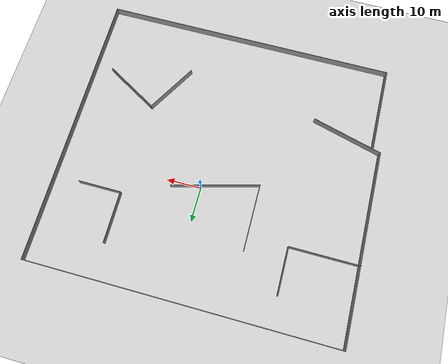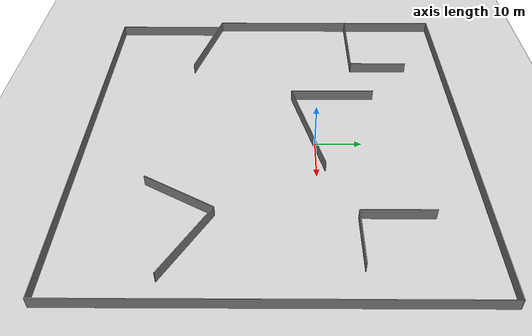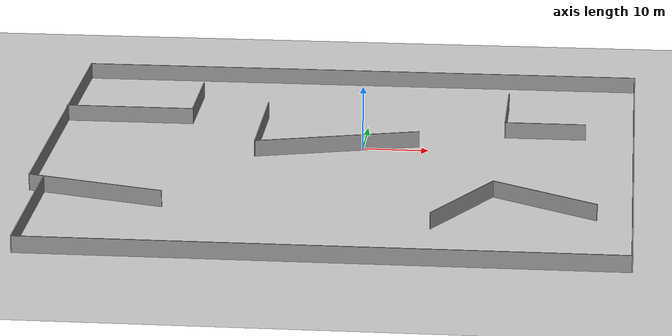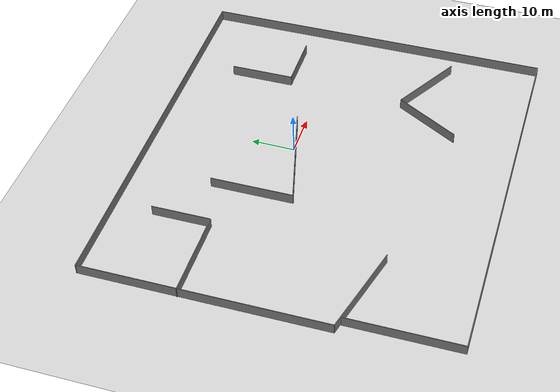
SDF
<sdf version="1.7">
 <world name="default">
  <light name="sun" type="directional">
   <pose>0 0 10 0 -0 0</pose>
   <diffuse>0.8 0.8 0.8 1</diffuse>
   <specular>0.2 0.2 0.2 1</specular>
   <attenuation>
    <range>1000</range>
    <constant>0.9</constant>
    <linear>0.01</linear>
    <quadratic>0.001</quadratic>
   </attenuation>
   <direction>-0.5 0.1 -0.9</direction>
   <spot><inner_angle>0</inner_angle><outer_angle>0</outer_angle><falloff>0</falloff></spot>
  </light>
  <model name="ground_plane">
   <static>1</static>
   <link name="link">
    <collision name="collision">
     <geometry><plane><normal>0 0 1</normal><size>100 100</size></plane></geometry>
     <surface><friction><ode><mu>100</mu><mu2>50</mu2></ode></friction></surface>
    </collision>
    <visual name="visual">
     <cast_shadows>0</cast_shadows>
     <geometry><plane><normal>0 0 1</normal><size>100 100</size></plane></geometry>
     <material>
      <script><uri>file://media/materials/scripts/gazebo.material</uri><name>Gazebo/Grey</name></script>
     </material>
    </visual>
   </link>
  </model>
  <gravity>0 0 -9.8</gravity>
  <magnetic_field>6e-06 2.3e-05 -4.2e-05</magnetic_field>
  <atmosphere type="adiabatic"/>
  <physics type="ode">
   <max_step_size>0.001</max_step_size>
   <real_time_factor>1</real_time_factor>
   <real_time_update_rate>1000</real_time_update_rate>
  </physics>
  <scene><ambient>0.4 0.4 0.4 1</ambient><background>0.7 0.7 0.7 1</background><shadows>1</shadows></scene>
  <audio><device>default</device></audio>
  <spherical_coordinates>
   <surface_model>EARTH_WGS84</surface_model>
   <latitude_deg>0</latitude_deg>
   <longitude_deg>0</longitude_deg>
   <elevation>0</elevation>
   <heading_deg>0</heading_deg>
  </spherical_coordinates>
  <model name="Untitled2">
   <pose>-3.13861 -8.53819 0 0 -0 0</pose>
   <link name="Wall_22">
    <collision name="Wall_22_Collision">
     <geometry><box><size>25.25 0.15 2.5</size></box></geometry>
     <pose>0 0 1.25 0 -0 0</pose>
    </collision>
    <visual name="Wall_22_Visual">
     <pose>0 0 1.25 0 -0 0</pose>
     <geometry><box><size>25.25 0.15 2.5</size></box></geometry>
     <material>
      <script><uri>file://media/materials/scripts/gazebo.material</uri><name>Gazebo/Grey</name></script>
      <ambient>1 1 1 1</ambient>
     </material>
     <meta><layer>0</layer></meta>
    </visual>
    <pose>-41.9854 -28 0 0 -0 -1.5708</pose>
   </link>
   <link name="Wall_23">
    <collision name="Wall_23_Collision">
     <geometry><box><size>86.5 0.15 2.5</size></box></geometry>
     <pose>0 0 1.25 0 -0 0</pose>
    </collision>
    <visual name="Wall_23_Visual">
     <pose>0 0 1.25 0 -0 0</pose>
     <geometry><box><size>86.5 0.15 2.5</size></box></geometry>
     <material>
      <script><uri>file://media/materials/scripts/gazebo.material</uri><name>Gazebo/Grey</name></script>
      <ambient>1 1 1 1</ambient>
     </material>
     <meta><layer>0</layer></meta>
    </visual>
    <pose>1.18963 -40.55 0 0 -0 0</pose>
   </link>
   <link name="Wall_24">
    <collision name="Wall_24_Collision">
     <geometry><box><size>81.25 0.15 2.5</size></box></geometry>
     <pose>0 0 1.25 0 -0 0</pose>
    </collision>
    <visual name="Wall_24_Visual">
     <pose>0 0 1.25 0 -0 0</pose>
     <geometry><box><size>81.25 0.15 2.5</size></box></geometry>
     <material>
      <script><uri>file://media/materials/scripts/gazebo.material</uri><name>Gazebo/Grey</name></script>
      <ambient>1 1 1 1</ambient>
     </material>
     <meta><layer>0</layer></meta>
    </visual>
    <pose>44.3646 -2e-06 0 0 -0 1.5708</pose>
   </link>
   <link name="Wall_25">
    <collision name="Wall_25_Collision">
     <geometry><box><size>88.75 0.15 2.5</size></box></geometry>
     <pose>0 0 1.25 0 -0 0</pose>
    </collision>
    <visual name="Wall_25_Visual">
     <pose>0 0 1.25 0 -0 0</pose>
     <geometry><box><size>88.75 0.15 2.5</size></box></geometry>
     <material>
      <script><uri>file://media/materials/scripts/gazebo.material</uri><name>Gazebo/Grey</name></script>
      <ambient>1 1 1 1</ambient>
     </material>
     <meta><layer>0</layer></meta>
    </visual>
    <pose>0.064628 40.55 0 0 -0 3.14159</pose>
   </link>
   <link name="Wall_26">
    <collision name="Wall_26_Collision">
     <geometry><box><size>55.25 0.15 2.5</size></box></geometry>
     <pose>0 0 1.25 0 -0 0</pose>
    </collision>
    <visual name="Wall_26_Visual">
     <pose>0 0 1.25 0 -0 0</pose>
     <geometry><box><size>55.25 0.15 2.5</size></box></geometry>
     <material>
      <script><uri>file://media/materials/scripts/gazebo.material</uri><name>Gazebo/Grey</name></script>
      <ambient>1 1 1 1</ambient>
     </material>
     <meta><layer>0</layer></meta>
    </visual>
    <pose>-44.2354 13 0 0 -0 -1.5708</pose>
   </link>
   <link name="Wall_27">
    <collision name="Wall_27_Collision">
     <geometry><box><size>21.25 0.15 2.5</size></box></geometry>
     <pose>0 0 1.25 0 -0 0</pose>
    </collision>
    <visual name="Wall_27_Visual">
     <pose>0 0 1.25 0 -0 0</pose>
     <geometry><box><size>21.25 0.15 2.5</size></box></geometry>
     <material>
      <script><uri>file://media/materials/scripts/gazebo.material</uri><name>Gazebo/Grey</name></script>
      <ambient>1 1 1 1</ambient>
     </material>
     <meta><layer>0</layer></meta>
    </visual>
    <pose>-34.0449 -17.2805 0 0 -0 -0.261799</pose>
   </link>
   <link name="Wall_29">
    <collision name="Wall_29_Collision">
     <geometry><box><size>19 0.15 2.5</size></box></geometry>
     <pose>0 0 1.25 0 -0 0</pose>
    </collision>
    <visual name="Wall_29_Visual">
     <pose>0 0 1.25 0 -0 0</pose>
     <geometry><box><size>19 0.15 2.5</size></box></geometry>
     <material>
      <script><uri>file://media/materials/scripts/gazebo.material</uri><name>Gazebo/Grey</name></script>
      <ambient>1 1 1 1</ambient>
     </material>
     <meta><layer>0</layer></meta>
    </visual>
    <pose>-12.993 13.1456 0 0 -0 -1.5708</pose>
   </link>
   <link name="Wall_30">
    <collision name="Wall_30_Collision">
     <geometry><box><size>25.5 0.15 2.5</size></box></geometry>
     <pose>0 0 1.25 0 -0 0</pose>
    </collision>
    <visual name="Wall_30_Visual">
     <pose>0 0 1.25 0 -0 0</pose>
     <geometry><box><size>25.5 0.15 2.5</size></box></geometry>
     <material>
      <script><uri>file://media/materials/scripts/gazebo.material</uri><name>Gazebo/Grey</name></script>
      <ambient>1 1 1 1</ambient>
     </material>
     <meta><layer>0</layer></meta>
    </visual>
    <pose>-0.74989 7.00118 0 0 -0 0.261799</pose>
   </link>
   <link name="Wall_32">
    <collision name="Wall_32_Collision">
     <geometry><box><size>16.75 0.15 2.5</size></box></geometry>
     <pose>0 0 1.25 0 -0 0</pose>
    </collision>
    <visual name="Wall_32_Visual">
     <pose>0 0 1.25 0 -0 0</pose>
     <geometry><box><size>16.75 0.15 2.5</size></box></geometry>
     <material>
      <script><uri>file://media/materials/scripts/gazebo.material</uri><name>Gazebo/Grey</name></script>
      <ambient>1 1 1 1</ambient>
     </material>
     <meta><layer>0</layer></meta>
    </visual>
    <pose>19.7965 -18.6322 0 0 -0 1.0472</pose>
   </link>
   <link name="Wall_33">
    <collision name="Wall_33_Collision">
     <geometry><box><size>17.75 0.15 2.5</size></box></geometry>
     <pose>0 0 1.25 0 -0 0</pose>
    </collision>
    <visual name="Wall_33_Visual">
     <pose>0 0 1.25 0 -0 0</pose>
     <geometry><box><size>17.75 0.15 2.5</size></box></geometry>
     <material>
      <script><uri>file://media/materials/scripts/gazebo.material</uri><name>Gazebo/Grey</name></script>
      <ambient>1 1 1 1</ambient>
     </material>
     <meta><layer>0</layer></meta>
    </visual>
    <pose>31.5675 -15.8442 0 0 -0 -0.523599</pose>
   </link>
   <link name="Wall_35">
    <collision name="Wall_35_Collision">
     <geometry><box><size>14.75 0.15 2.5</size></box></geometry>
     <pose>0 0 1.25 0 -0 0</pose>
    </collision>
    <visual name="Wall_35_Visual">
     <pose>0 0 1.25 0 -0 0</pose>
     <geometry><box><size>14.75 0.15 2.5</size></box></geometry>
     <material>
      <script><uri>file://media/materials/scripts/gazebo.material</uri><name>Gazebo/Grey</name></script>
      <ambient>1 1 1 1</ambient>
     </material>
     <meta><layer>0</layer></meta>
    </visual>
    <pose>24.5346 23.1712 0 0 -0 -1.5708</pose>
   </link>
   <link name="Wall_36">
    <collision name="Wall_36_Collision">
     <geometry><box><size>12.5 0.15 2.5</size></box></geometry>
     <pose>0 0 1.25 0 -0 0</pose>
    </collision>
    <visual name="Wall_36_Visual">
     <pose>0 0 1.25 0 -0 0</pose>
     <geometry><box><size>12.5 0.15 2.5</size></box></geometry>
     <material>
      <script><uri>file://media/materials/scripts/gazebo.material</uri><name>Gazebo/Grey</name></script>
      <ambient>1 1 1 1</ambient>
     </material>
     <meta><layer>0</layer></meta>
    </visual>
    <pose>30.7096 15.8712 0 0 -0 0</pose>
   </link>
   <link name="Wall_38">
    <collision name="Wall_38_Collision">
     <geometry><box><size>13.5 0.15 2.5</size></box></geometry>
     <pose>0 0 1.25 0 -0 0</pose>
    </collision>
    <visual name="Wall_38_Visual">
     <pose>0 0 1.25 0 -0 0</pose>
     <geometry><box><size>13.5 0.15 2.5</size></box></geometry>
     <material>
      <script><uri>file://media/materials/scripts/gazebo.material</uri><name>Gazebo/Grey</name></script>
      <ambient>1 1 1 1</ambient>
     </material>
     <meta><layer>0</layer></meta>
    </visual>
    <pose>-24.5146 25.113 0 0 -0 -1.5708</pose>
   </link>
   <link name="Wall_39">
    <collision name="Wall_39_Collision">
     <geometry><box><size>20 0.15 2.5</size></box></geometry>
     <pose>0 0 1.25 0 -0 0</pose>
    </collision>
    <visual name="Wall_39_Visual">
     <pose>0 0 1.25 0 -0 0</pose>
     <geometry><box><size>20 0.15 2.5</size></box></geometry>
     <material>
      <script><uri>file://media/materials/scripts/gazebo.material</uri><name>Gazebo/Grey</name></script>
      <ambient>1 1 1 1</ambient>
     </material>
     <meta><layer>0</layer></meta>
    </visual>
    <pose>-34.4396 18.438 0 0 -0 3.14159</pose>
   </link>
   <static>1</static>
  </model>
 </world>
</sdf>
